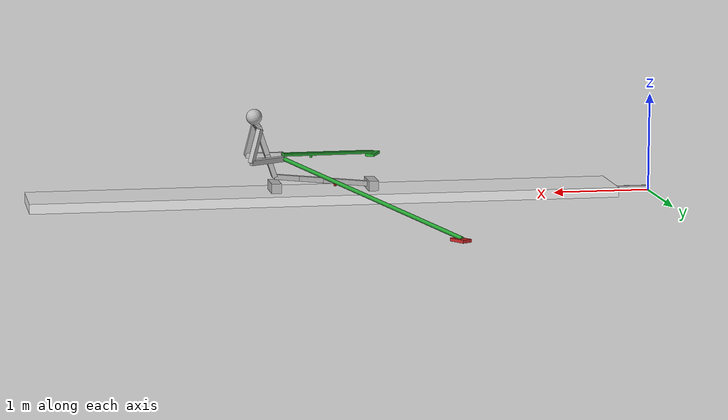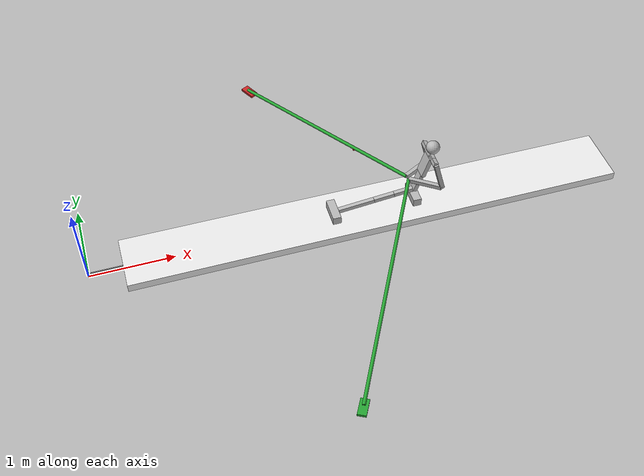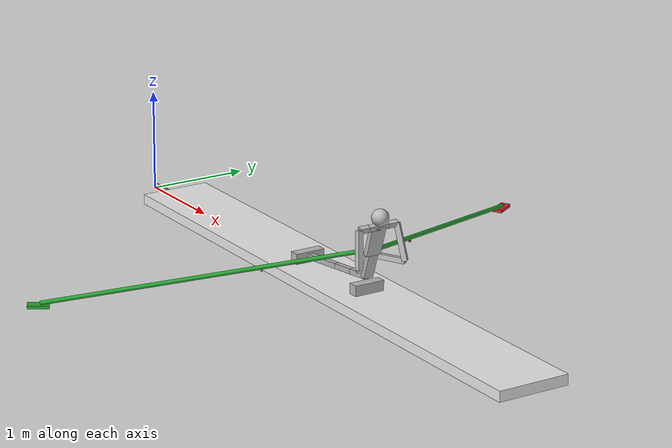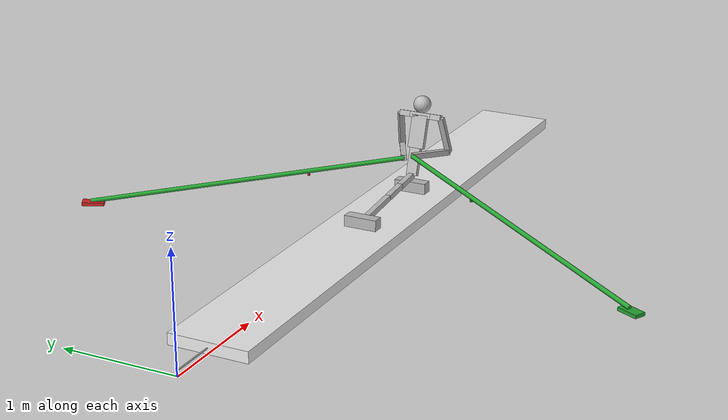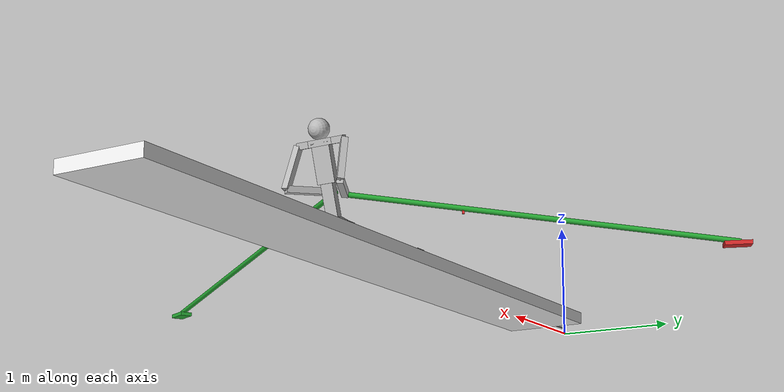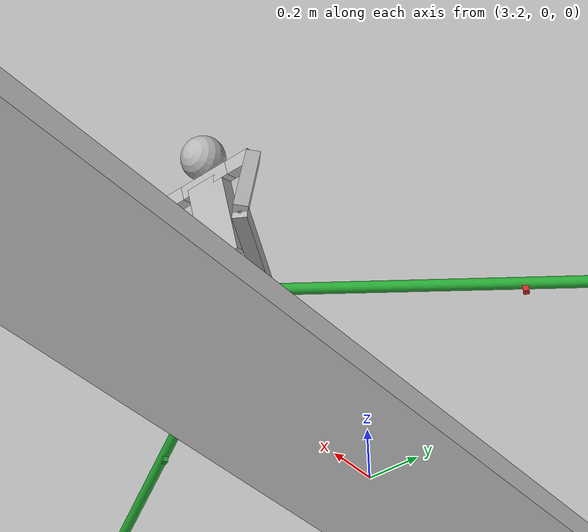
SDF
<sdf version='1.6'>
  <model name='myboat'>
    <link name='l1'>
      <pose frame=''>0 0 0.25 0 -0 0</pose>
      <inertial>
        <pose frame=''>0 0 -0.1 0 -0 0</pose>
        <mass>0.01</mass>
        <inertia>
          <ixx>3.3e-05</ixx>
          <ixy>0</ixy>
          <ixz>0</ixz>
          <iyy>3.3e-05</iyy>
          <iyz>0</iyz>
          <izz>1.67e-07</izz>
        </inertia>
      </inertial>
      <visual name='l1_visual'>
        <pose frame=''>0 0 -0.1 0 -0 0</pose>
        <geometry>
          <box>
            <size>0.01 0.01 0.2</size>
          </box>
        </geometry>
      </visual>
    </link>
    <joint name='prism' type='prismatic'>
      <child>l1</child>
      <parent>world</parent>
      <axis>
        <xyz>1 0 0</xyz>
        <limit>
          <lower>0</lower>
          <upper>1000</upper>
          <effort>101</effort>
          <velocity>0.5</velocity>
        </limit>
        <dynamics>
          <damping>0.005</damping>
          <friction>0</friction>
          <spring_reference>0</spring_reference>
          <spring_stiffness>0</spring_stiffness>
        </dynamics>
        <use_parent_model_frame>1</use_parent_model_frame>
      </axis>
    </joint>
    <link name='l2'>
      <pose frame=''>0 0 0.05 3.14159 1.57079 3.14159</pose>
      <inertial>
        <pose frame=''>0 0 0.2 0 -0 0</pose>
        <mass>0.01</mass>
        <inertia>
          <ixx>0.000133</ixx>
          <ixy>0</ixy>
          <ixz>0</ixz>
          <iyy>133</iyy>
          <iyz>0</iyz>
          <izz>1.67e-07</izz>
        </inertia>
      </inertial>
      <visual name='l2_visual'>
        <pose frame=''>0 0 0.2 0 -0 0</pose>
        <geometry>
          <box>
            <size>0.01 0.01 0.4</size>
          </box>
        </geometry>
      </visual>
    </link>
    <joint name='rev1' type='revolute'>
      <child>l2</child>
      <parent>l1</parent>
      <axis>
        <xyz>0 1 0</xyz>
        <limit>
          <lower>-1</lower>
          <upper>1</upper>
          <effort>101</effort>
          <velocity>1</velocity>
        </limit>
        <dynamics>
          <damping>0.005</damping>
          <friction>0</friction>
          <spring_reference>0</spring_reference>
          <spring_stiffness>0</spring_stiffness>
        </dynamics>
        <use_parent_model_frame>1</use_parent_model_frame>
      </axis>
    </joint>
    <link name='skiff'>
      <pose frame=''>0.4 0 0.05 0 0 3.14159</pose>
      <inertial>
        <pose frame=''>-2.99941 0 0.000118 0 -0 0</pose>
        <mass>85.1</mass>
        <inertia>
          <ixx>3.2018</ixx>
          <ixy>0</ixy>
          <ixz>-0.00499412</ixz>
          <iyy>225.026</iyy>
          <iyz>0</iyz>
          <izz>228.026</izz>
        </inertia>
      </inertial>
      <collision name='skiff_collision'>
        <pose frame=''>-3 0 0 0 -0 0</pose>
        <geometry>
          <box>
            <size>6 0.7 0.1</size>
          </box>
        </geometry>
        <surface>
          <friction>
            <ode>
              <slip1>0.05</slip1>
              <slip2>0.12</slip2>
              <mu>0.01</mu>
              <mu2>0.01</mu2>
            </ode>
          </friction>
          <contact>
            <ode/>
          </contact>
        </surface>
      </collision>
      <collision name='skiff_fixed_joint_lump__footplate_collision_1'>
        <pose frame=''>-2.5 0 0.1 0 -0 0</pose>
        <geometry>
          <box>
            <size>0.1 0.3 0.1</size>
          </box>
        </geometry>
      </collision>
      <visual name='skiff_visual'>
        <pose frame=''>-3 0 0 0 -0 0</pose>
        <geometry>
          <box>
            <size>6 0.7 0.1</size>
          </box>
        </geometry>
        <material>
          <script>
            <name>Gazebo/White</name>
            <uri>file://media/materials/scripts/gazebo.material</uri>
          </script>
        </material>
      </visual>
      <visual name='skiff_fixed_joint_lump__footplate_visual_1'>
        <pose frame=''>-2.5 0 0.1 0 -0 0</pose>
        <geometry>
          <box>
            <size>0.1 0.3 0.1</size>
          </box>
        </geometry>
      </visual>
      <gravity>1</gravity>
      <velocity_decay/>
    </link>
    <joint name='rev2' type='revolute'>
      <child>skiff</child>
      <parent>l2</parent>
      <axis>
        <xyz>-0 -1 0</xyz>
        <limit>
          <lower>-1</lower>
          <upper>1</upper>
          <effort>101</effort>
          <velocity>1</velocity>
        </limit>
        <dynamics>
          <damping>0.005</damping>
          <friction>0</friction>
          <spring_reference>0</spring_reference>
          <spring_stiffness>0</spring_stiffness>
        </dynamics>
        <use_parent_model_frame>1</use_parent_model_frame>
      </axis>
    </joint>
    <link name='port_rowlock_l'>
      <pose frame=''>3.4 0.8 0.3 0 0 -2.64769</pose>
      <inertial>
        <pose frame=''>0 0 0 0 -0 0</pose>
        <mass>0.1</mass>
        <inertia>
          <ixx>1.7e-05</ixx>
          <ixy>0</ixy>
          <ixz>0</ixz>
          <iyy>1.7e-05</iyy>
          <iyz>0</iyz>
          <izz>7e-06</izz>
        </inertia>
      </inertial>
      <collision name='port_rowlock_l_collision'>
        <pose frame=''>0 0 0 0 -0 0</pose>
        <geometry>
          <box>
            <size>0.02 0.02 0.04</size>
          </box>
        </geometry>
        <surface>
          <contact>
            <ode/>
          </contact>
          <friction>
            <ode>
              <mu>0.01</mu>
              <mu2>0.01</mu2>
            </ode>
          </friction>
        </surface>
      </collision>
      <visual name='port_rowlock_l_visual'>
        <pose frame=''>0 0 0 0 -0 0</pose>
        <geometry>
          <box>
            <size>0.02 0.02 0.04</size>
          </box>
        </geometry>
        <material>
          <script>
            <name>Gazebo/Red</name>
            <uri>file://media/materials/scripts/gazebo.material</uri>
          </script>
        </material>
      </visual>
      <gravity>1</gravity>
      <velocity_decay/>
    </link>
    <joint name='port_rowlock' type='revolute'>
      <child>port_rowlock_l</child>
      <parent>skiff</parent>
      <axis>
        <xyz>-0 0 1</xyz>
        <limit>
          <lower>-1.4</lower>
          <upper>1.4</upper>
          <effort>101</effort>
          <velocity>1</velocity>
        </limit>
        <dynamics>
          <damping>0.005</damping>
          <friction>0</friction>
          <spring_reference>0</spring_reference>
          <spring_stiffness>0</spring_stiffness>
        </dynamics>
        <use_parent_model_frame>1</use_parent_model_frame>
      </axis>
      <physics>
        <provide_feedback>1</provide_feedback>
        <ode>
          <provide_feedback>1</provide_feedback>
          <limit>
            <cfm>0</cfm>
            <erp>0.2</erp>
          </limit>
        </ode>
      </physics>
    </joint>
    <link name='port_oar_l'>
      <pose frame=''>3.4 0.8 0.32 -3.14159 1.4349 -1.0769</pose>
      <inertial>
        <pose frame=''>0 0 0.565 0 -0 0</pose>
        <mass>1</mass>
        <inertia>
          <ixx>0.6</ixx>
          <ixy>0</ixy>
          <ixz>0</ixz>
          <iyy>0.6</iyy>
          <iyz>0</iyz>
          <izz>0.001</izz>
        </inertia>
      </inertial>
      <collision name='port_oar_l_collision'>
        <pose frame=''>0 0 0.565 0 -0 0</pose>
        <geometry>
          <cylinder>
            <length>2.27</length>
            <radius>0.02</radius>
          </cylinder>
        </geometry>
        <surface>
          <contact>
            <ode/>
          </contact>
          <friction>
            <ode>
              <mu>0.01</mu>
              <mu2>0.01</mu2>
            </ode>
          </friction>
        </surface>
      </collision>
      <visual name='port_oar_l_visual'>
        <pose frame=''>0 0 0.565 0 -0 0</pose>
        <geometry>
          <cylinder>
            <length>2.87</length>
            <radius>0.02</radius>
          </cylinder>
        </geometry>
        <material>
          <script>
            <name>Gazebo/Green</name>
            <uri>file://media/materials/scripts/gazebo.material</uri>
          </script>
        </material>
      </visual>
      <gravity>1</gravity>
      <velocity_decay/>
    </link>
    <joint name='port_oar' type='revolute'>
      <child>port_oar_l</child>
      <parent>port_rowlock_l</parent>
      <axis>
        <xyz>-0.880491 -0.474063 -0</xyz>
        <limit>
          <lower>-0.1</lower>
          <upper>0.4</upper>
          <effort>101</effort>
          <velocity>1</velocity>
        </limit>
        <dynamics>
          <damping>0.005</damping>
          <friction>0</friction>
          <spring_reference>0</spring_reference>
          <spring_stiffness>0</spring_stiffness>
        </dynamics>
        <use_parent_model_frame>1</use_parent_model_frame>
      </axis>
      <physics>
        <provide_feedback>1</provide_feedback>
        <ode>
          <provide_feedback>1</provide_feedback>
          <limit>
            <cfm>0</cfm>
            <erp>0.2</erp>
          </limit>
        </ode>
      </physics>
    </joint>
    <link name='handle_right_l1'>
      <pose frame=''>3.80863 0.041036 0.437869 1.6571 0 -2.64769</pose>
      <inertial>
        <pose frame=''>0 0 0 0 -0 0</pose>
        <mass>0.01</mass>
        <inertia>
          <ixx>1.67e-07</ixx>
          <ixy>0</ixy>
          <ixz>0</ixz>
          <iyy>1.67e-07</iyy>
          <iyz>0</iyz>
          <izz>1.67e-07</izz>
        </inertia>
      </inertial>
      <visual name='handle_right_l1_visual'>
        <pose frame=''>0 0 0 0 -0 0</pose>
        <geometry>
          <box>
            <size>0.01 0.01 0.01</size>
          </box>
        </geometry>
      </visual>
    </link>
    <joint name='handle_right_j1' type='revolute'>
      <child>handle_right_l1</child>
      <parent>port_oar_l</parent>
      <axis>
        <xyz>0.880491 0.474063 0</xyz>
        <limit>
          <lower>-1</lower>
          <upper>1</upper>
          <effort>101</effort>
          <velocity>1</velocity>
        </limit>
        <dynamics>
          <damping>0.005</damping>
          <friction>0</friction>
          <spring_reference>0</spring_reference>
          <spring_stiffness>0</spring_stiffness>
        </dynamics>
        <use_parent_model_frame>1</use_parent_model_frame>
      </axis>
    </joint>
    <link name='handle_right_l2'>
      <pose frame=''>3.80863 0.041036 0.437869 1.6571 -0.007372 -2.64833</pose>
      <inertial>
        <pose frame=''>0 0 0 0 -0 0</pose>
        <mass>0.01</mass>
        <inertia>
          <ixx>1.67e-07</ixx>
          <ixy>0</ixy>
          <ixz>0</ixz>
          <iyy>1.67e-07</iyy>
          <iyz>0</iyz>
          <izz>1.67e-07</izz>
        </inertia>
      </inertial>
      <visual name='handle_right_l2_visual'>
        <pose frame=''>0 0 0 0 -0 0</pose>
        <geometry>
          <box>
            <size>0.01 0.01 0.01</size>
          </box>
        </geometry>
      </visual>
    </link>
    <joint name='handle_right_j2' type='revolute'>
      <child>handle_right_l2</child>
      <parent>handle_right_l1</parent>
      <axis>
        <xyz>-0.472299 0.877214 -0.086193</xyz>
        <limit>
          <lower>-1</lower>
          <upper>1</upper>
          <effort>101</effort>
          <velocity>1</velocity>
        </limit>
        <dynamics>
          <damping>0.005</damping>
          <friction>0</friction>
          <spring_reference>0</spring_reference>
          <spring_stiffness>0</spring_stiffness>
        </dynamics>
        <use_parent_model_frame>1</use_parent_model_frame>
      </axis>
    </joint>
    <link name='arm_r_lower'>
      <pose frame=''>3.80863 0.041036 0.437869 1.65716 -0.006648 -2.6567</pose>
      <inertial>
        <pose frame=''>-0.2 0 0 0 -0 0</pose>
        <mass>1</mass>
        <inertia>
          <ixx>0.0004</ixx>
          <ixy>0</ixy>
          <ixz>0</ixz>
          <iyy>0.0035</iyy>
          <iyz>0</iyz>
          <izz>0.0035</izz>
        </inertia>
      </inertial>
      <collision name='arm_r_lower_collision'>
        <pose frame=''>-0.2 0 0 0 -0 0</pose>
        <geometry>
          <box>
            <size>0.4 0.05 0.05</size>
          </box>
        </geometry>
      </collision>
      <visual name='arm_r_lower_visual'>
        <pose frame=''>-0.2 0 0 0 -0 0</pose>
        <geometry>
          <box>
            <size>0.4 0.05 0.05</size>
          </box>
        </geometry>
      </visual>
    </link>
    <joint name='handle_right_j3' type='revolute'>
      <child>arm_r_lower</child>
      <parent>handle_right_l2</parent>
      <axis>
        <xyz>0.034344 -0.079398 -0.996251</xyz>
        <limit>
          <lower>-1</lower>
          <upper>1</upper>
          <effort>101</effort>
          <velocity>1</velocity>
        </limit>
        <dynamics>
          <damping>0.005</damping>
          <friction>0</friction>
          <spring_reference>0</spring_reference>
          <spring_stiffness>0</spring_stiffness>
        </dynamics>
        <use_parent_model_frame>1</use_parent_model_frame>
      </axis>
    </joint>
    <link name='right_elbow_psi_link'>
      <pose frame=''>4.16251 0.227477 0.43521 1.87971 -1.28315 -2.95309</pose>
      <inertial>
        <pose frame=''>0 0 0 0 -0 0</pose>
        <mass>0.01</mass>
        <inertia>
          <ixx>1.67e-07</ixx>
          <ixy>0</ixy>
          <ixz>0</ixz>
          <iyy>1.67e-07</iyy>
          <iyz>0</iyz>
          <izz>1.67e-07</izz>
        </inertia>
      </inertial>
      <visual name='right_elbow_psi_link_visual'>
        <pose frame=''>0 0 0 0 -0 0</pose>
        <geometry>
          <box>
            <size>0.01 0.01 0.01</size>
          </box>
        </geometry>
      </visual>
    </link>
    <joint name='elbow_right' type='revolute'>
      <child>right_elbow_psi_link</child>
      <parent>arm_r_lower</parent>
      <axis>
        <xyz>-0.464884 0.88116 -0.086252</xyz>
        <limit>
          <lower>-1</lower>
          <upper>1</upper>
          <effort>101</effort>
          <velocity>1</velocity>
        </limit>
        <dynamics>
          <damping>0.5</damping>
          <friction>0</friction>
          <spring_reference>0</spring_reference>
          <spring_stiffness>0</spring_stiffness>
        </dynamics>
        <use_parent_model_frame>1</use_parent_model_frame>
      </axis>
    </joint>
    <link name='right_elbow_theta_link'>
      <pose frame=''>4.16251 0.227477 0.43521 1.78432 -1.29059 -2.85373</pose>
      <inertial>
        <pose frame=''>0 0 0 0 -0 0</pose>
        <mass>0.01</mass>
        <inertia>
          <ixx>1.67e-07</ixx>
          <ixy>0</ixy>
          <ixz>0</ixz>
          <iyy>1.67e-07</iyy>
          <iyz>0</iyz>
          <izz>1.67e-07</izz>
        </inertia>
      </inertial>
      <visual name='right_elbow_theta_link_visual'>
        <pose frame=''>0 0 0 0 -0 0</pose>
        <geometry>
          <box>
            <size>0.01 0.01 0.01</size>
          </box>
        </geometry>
      </visual>
    </link>
    <joint name='elbow_theta_r' type='revolute'>
      <child>right_elbow_theta_link</child>
      <parent>right_elbow_psi_link</parent>
      <axis>
        <xyz>0.840371 0.46982 0.27027</xyz>
        <limit>
          <lower>-2</lower>
          <upper>1</upper>
          <effort>101</effort>
          <velocity>1</velocity>
        </limit>
        <dynamics>
          <damping>0.5</damping>
          <friction>0</friction>
          <spring_reference>0</spring_reference>
          <spring_stiffness>0</spring_stiffness>
        </dynamics>
        <use_parent_model_frame>1</use_parent_model_frame>
      </axis>
    </joint>
    <link name='arm_r_upper'>
      <pose frame=''>4.16251 0.227477 0.43521 2.06182 -1.29059 -2.85373</pose>
      <inertial>
        <pose frame=''>0.175 0 0 0 -0 0</pose>
        <mass>1</mass>
        <inertia>
          <ixx>0.004</ixx>
          <ixy>0</ixy>
          <ixz>0</ixz>
          <iyy>0.01</iyy>
          <iyz>0</iyz>
          <izz>0.01</izz>
        </inertia>
      </inertial>
      <collision name='arm_r_upper_collision'>
        <pose frame=''>0.175 0 0 0 -0 0</pose>
        <geometry>
          <box>
            <size>0.35 0.05 0.05</size>
          </box>
        </geometry>
      </collision>
      <visual name='arm_r_upper_visual'>
        <pose frame=''>0.175 0 0 0 -0 0</pose>
        <geometry>
          <box>
            <size>0.35 0.05 0.05</size>
          </box>
        </geometry>
      </visual>
    </link>
    <joint name='elbow_xx_r' type='revolute'>
      <child>arm_r_upper</child>
      <parent>right_elbow_theta_link</parent>
      <axis>
        <xyz>0.265171 0.078512 -0.960999</xyz>
        <limit>
          <lower>-1</lower>
          <upper>2</upper>
          <effort>101</effort>
          <velocity>1</velocity>
        </limit>
        <dynamics>
          <damping>0.5</damping>
          <friction>0</friction>
          <spring_reference>0</spring_reference>
          <spring_stiffness>0</spring_stiffness>
        </dynamics>
        <use_parent_model_frame>1</use_parent_model_frame>
      </axis>
    </joint>
    <link name='right_shoulder_psi_link'>
      <pose frame=''>4.0697 0.199998 0.77156 -2.72451 -0.924763 -1.11523</pose>
      <inertial>
        <pose frame=''>0 0 0 0 -0 0</pose>
        <mass>0.01</mass>
        <inertia>
          <ixx>1.67e-07</ixx>
          <ixy>0</ixy>
          <ixz>0</ixz>
          <iyy>1.67e-07</iyy>
          <iyz>0</iyz>
          <izz>1.67e-07</izz>
        </inertia>
      </inertial>
      <visual name='right_shoulder_psi_link_visual'>
        <pose frame=''>0 0 0 0 -0 0</pose>
        <geometry>
          <box>
            <size>0.01 0.01 0.01</size>
          </box>
        </geometry>
      </visual>
    </link>
    <joint name='shoulder_theta_r' type='revolute'>
      <child>right_shoulder_psi_link</child>
      <parent>arm_r_upper</parent>
      <axis>
        <xyz>0.67872 0.692722 0.243876</xyz>
        <limit>
          <lower>-1.5</lower>
          <upper>1</upper>
          <effort>101</effort>
          <velocity>1</velocity>
        </limit>
        <dynamics>
          <damping>0.5</damping>
          <friction>0</friction>
          <spring_reference>0</spring_reference>
          <spring_stiffness>0</spring_stiffness>
        </dynamics>
        <use_parent_model_frame>1</use_parent_model_frame>
      </axis>
    </joint>
    <link name='right_shoulder_xx_link'>
      <pose frame=''>4.0697 0.199998 0.77156 1.02169 -0.924763 -1.11523</pose>
      <inertial>
        <pose frame=''>0 0 0 0 -0 0</pose>
        <mass>0.01</mass>
        <inertia>
          <ixx>1.67e-07</ixx>
          <ixy>0</ixy>
          <ixz>0</ixz>
          <iyy>1.67e-07</iyy>
          <iyz>0</iyz>
          <izz>1.67e-07</izz>
        </inertia>
      </inertial>
      <visual name='right_shoulder_xx_link_visual'>
        <pose frame=''>0 0 0 0 -0 0</pose>
        <geometry>
          <box>
            <size>0.01 0.01 0.01</size>
          </box>
        </geometry>
      </visual>
    </link>
    <joint name='shoulder_psi_r' type='revolute'>
      <child>right_shoulder_xx_link</child>
      <parent>right_shoulder_psi_link</parent>
      <axis>
        <xyz>0.264872 -0.540625 0.798478</xyz>
        <limit>
          <lower>-1.5</lower>
          <upper>1.5</upper>
          <effort>101</effort>
          <velocity>1</velocity>
        </limit>
        <dynamics>
          <damping>0.005</damping>
          <friction>0</friction>
          <spring_reference>0</spring_reference>
          <spring_stiffness>0</spring_stiffness>
        </dynamics>
        <use_parent_model_frame>1</use_parent_model_frame>
      </axis>
    </joint>
    <link name='shoulder_right'>
      <pose frame=''>4.0697 0.199998 0.77156 0.005215 -1.25116 -0.004393</pose>
      <inertial>
        <pose frame=''>0 -0.19901 0 0 -0 0</pose>
        <mass>1.01</mass>
        <inertia>
          <ixx>0.0130992</ixx>
          <ixy>0</ixy>
          <ixz>0</ixz>
          <iyy>0.000400167</iyy>
          <iyz>0</iyz>
          <izz>0.0130992</izz>
        </inertia>
      </inertial>
      <collision name='shoulder_right_collision'>
        <pose frame=''>0 -0.2 0 0 -0 0</pose>
        <geometry>
          <box>
            <size>0.05 0.1 0.05</size>
          </box>
        </geometry>
      </collision>
      <visual name='shoulder_right_visual'>
        <pose frame=''>0 -0.05 0 0 -0 0</pose>
        <geometry>
          <box>
            <size>0.05 0.1 0.05</size>
          </box>
        </geometry>
      </visual>
      <visual name='shoulder_right_fixed_joint_lump__Rdummy_link_2_visual_1'>
        <pose frame=''>0 -0.1 0 -3.14159 -0 0</pose>
        <geometry>
          <box>
            <size>0.01 0.01 0.01</size>
          </box>
        </geometry>
      </visual>
    </link>
    <joint name='shoulder_r' type='revolute'>
      <child>shoulder_right</child>
      <parent>right_shoulder_xx_link</parent>
      <axis>
        <xyz>-0.949352 -0.001045 0.314212</xyz>
        <limit>
          <lower>-1</lower>
          <upper>0.5</upper>
          <effort>101</effort>
          <velocity>1</velocity>
        </limit>
        <dynamics>
          <damping>0.005</damping>
          <friction>0</friction>
          <spring_reference>0</spring_reference>
          <spring_stiffness>0</spring_stiffness>
        </dynamics>
        <use_parent_model_frame>1</use_parent_model_frame>
      </axis>
    </joint>
    <link name='port_blade_l'>
      <pose frame=''>2.46062 2.54474 0.049036 -3.14159 1.4349 -1.0769</pose>
      <inertial>
        <pose frame=''>0.02 0 -0.02 0 1.4 0</pose>
        <mass>1</mass>
        <inertia>
          <ixx>0.0009</ixx>
          <ixy>0</ixy>
          <ixz>0</ixz>
          <iyy>0.0034</iyy>
          <iyz>0</iyz>
          <izz>0.004</izz>
        </inertia>
      </inertial>
      <collision name='port_blade_l_collision'>
        <pose frame=''>0.02 0 -0.02 0 1.4 0</pose>
        <geometry>
          <box>
            <size>0.2 0.1 0.03</size>
          </box>
        </geometry>
        <surface>
          <contact>
            <ode/>
          </contact>
          <friction>
            <ode>
              <mu>10</mu>
              <mu2>10</mu2>
            </ode>
          </friction>
        </surface>
      </collision>
      <visual name='port_blade_l_visual'>
        <pose frame=''>0.02 0 -0.02 0 1.4 0</pose>
        <geometry>
          <box>
            <size>0.2 0.1 0.03</size>
          </box>
        </geometry>
        <material>
          <script>
            <name>Gazebo/Red</name>
            <uri>file://media/materials/scripts/gazebo.material</uri>
          </script>
        </material>
      </visual>
      <gravity>1</gravity>
      <velocity_decay/>
    </link>
    <joint name='port_blade' type='revolute'>
      <child>port_blade_l</child>
      <parent>port_oar_l</parent>
      <axis>
        <xyz>-0.880491 -0.474063 -0</xyz>
        <limit>
          <lower>-0.4</lower>
          <upper>0.4</upper>
          <effort>101</effort>
          <velocity>1</velocity>
        </limit>
        <dynamics>
          <damping>0.005</damping>
          <friction>0</friction>
          <spring_reference>0</spring_reference>
          <spring_stiffness>0</spring_stiffness>
        </dynamics>
        <use_parent_model_frame>1</use_parent_model_frame>
      </axis>
      <physics>
        <provide_feedback>1</provide_feedback>
        <ode>
          <provide_feedback>1</provide_feedback>
          <limit>
            <cfm>0</cfm>
            <erp>0.2</erp>
          </limit>
        </ode>
      </physics>
    </joint>
    <link name='lowerleg'>
      <pose frame=''>2.9 0 0.15 0 0.100168 -3.14159</pose>
      <inertial>
        <pose frame=''>-0.25 0 0 0 -0 0</pose>
        <mass>1</mass>
        <inertia>
          <ixx>0.001</ixx>
          <ixy>0</ixy>
          <ixz>0</ixz>
          <iyy>0.0005</iyy>
          <iyz>0</iyz>
          <izz>0.001</izz>
        </inertia>
      </inertial>
      <collision name='lowerleg_collision'>
        <pose frame=''>-0.25 0 0 0 -0 0</pose>
        <geometry>
          <box>
            <size>0.5 0.05 0.05</size>
          </box>
        </geometry>
      </collision>
      <visual name='lowerleg_visual'>
        <pose frame=''>-0.25 0 0 0 -0 0</pose>
        <geometry>
          <box>
            <size>0.5 0.05 0.05</size>
          </box>
        </geometry>
      </visual>
    </link>
    <joint name='fp_ll' type='revolute'>
      <child>lowerleg</child>
      <parent>skiff</parent>
      <axis>
        <xyz>-0 -1 0</xyz>
        <limit>
          <lower>0</lower>
          <upper>1.5708</upper>
          <effort>101</effort>
          <velocity>1</velocity>
        </limit>
        <dynamics>
          <damping>0.005</damping>
          <friction>0</friction>
          <spring_reference>0</spring_reference>
          <spring_stiffness>0</spring_stiffness>
        </dynamics>
        <use_parent_model_frame>1</use_parent_model_frame>
      </axis>
    </joint>
    <link name='upperleg_1'>
      <pose frame=''>3.39749 0 0.2 0 0.100168 -3.14159</pose>
      <inertial>
        <pose frame=''>-0.125 0 0 0 -0 0</pose>
        <mass>1</mass>
        <inertia>
          <ixx>0.001</ixx>
          <ixy>0</ixy>
          <ixz>0</ixz>
          <iyy>0.0005</iyy>
          <iyz>0</iyz>
          <izz>0.001</izz>
        </inertia>
      </inertial>
      <collision name='upperleg_1_collision'>
        <pose frame=''>-0.125 0 0 0 -0 0</pose>
        <geometry>
          <box>
            <size>0.25 0.05 0.05</size>
          </box>
        </geometry>
      </collision>
      <visual name='upperleg_1_visual'>
        <pose frame=''>-0.125 0 0 0 -0 0</pose>
        <geometry>
          <box>
            <size>0.25 0.05 0.05</size>
          </box>
        </geometry>
      </visual>
    </link>
    <joint name='knee' type='revolute'>
      <child>upperleg_1</child>
      <parent>lowerleg</parent>
      <axis>
        <xyz>-0 -1 0</xyz>
        <limit>
          <lower>-3.1</lower>
          <upper>0</upper>
          <effort>1000</effort>
          <velocity>1</velocity>
        </limit>
        <dynamics>
          <damping>0.005</damping>
          <friction>0</friction>
          <spring_reference>0</spring_reference>
          <spring_stiffness>0</spring_stiffness>
        </dynamics>
        <use_parent_model_frame>1</use_parent_model_frame>
      </axis>
    </joint>
    <link name='seat'>
      <pose frame=''>3.89514 0 0.15 0 0 3.14159</pose>
      <inertial>
        <pose frame=''>0 0 0 0 -0 0</pose>
        <mass>0.1</mass>
        <inertia>
          <ixx>0.001</ixx>
          <ixy>0</ixy>
          <ixz>0</ixz>
          <iyy>0.0005</iyy>
          <iyz>0</iyz>
          <izz>0.001</izz>
        </inertia>
      </inertial>
      <collision name='seat_collision'>
        <pose frame=''>0 0 0 0 -0 0</pose>
        <geometry>
          <box>
            <size>0.1 0.3 0.1</size>
          </box>
        </geometry>
      </collision>
      <visual name='seat_visual'>
        <pose frame=''>0 0 0 0 -0 0</pose>
        <geometry>
          <box>
            <size>0.1 0.3 0.1</size>
          </box>
        </geometry>
      </visual>
    </link>
    <joint name='sliding' type='prismatic'>
      <child>seat</child>
      <parent>skiff</parent>
      <axis>
        <xyz>-1 0 -0</xyz>
        <limit>
          <lower>-0.1</lower>
          <upper>0.8</upper>
          <effort>101</effort>
          <velocity>0.5</velocity>
        </limit>
        <dynamics>
          <damping>0.005</damping>
          <friction>0</friction>
          <spring_reference>0</spring_reference>
          <spring_stiffness>0</spring_stiffness>
        </dynamics>
        <use_parent_model_frame>1</use_parent_model_frame>
      </axis>
    </joint>
    <link name='upperleg_2'>
      <pose frame=''>3.89514 0 0.25 0 0.100168 -3.14159</pose>
      <inertial>
        <pose frame=''>0.125 0 0 0 -0 0</pose>
        <mass>1</mass>
        <inertia>
          <ixx>0.001</ixx>
          <ixy>0</ixy>
          <ixz>0</ixz>
          <iyy>0.0005</iyy>
          <iyz>0</iyz>
          <izz>0.001</izz>
        </inertia>
      </inertial>
      <collision name='upperleg_2_collision'>
        <pose frame=''>0.125 0 0 0 -0 0</pose>
        <geometry>
          <box>
            <size>0.25 0.05 0.05</size>
          </box>
        </geometry>
      </collision>
      <visual name='upperleg_2_visual'>
        <pose frame=''>0.125 0 0 0 -0 0</pose>
        <geometry>
          <box>
            <size>0.25 0.05 0.05</size>
          </box>
        </geometry>
      </visual>
    </link>
    <joint name='hip1' type='revolute'>
      <child>upperleg_2</child>
      <parent>seat</parent>
      <axis>
        <xyz>-0 -1 0</xyz>
        <limit>
          <lower>-1.6</lower>
          <upper>0</upper>
          <effort>101</effort>
          <velocity>1</velocity>
        </limit>
        <dynamics>
          <damping>0.005</damping>
          <friction>0</friction>
          <spring_reference>0</spring_reference>
          <spring_stiffness>0</spring_stiffness>
        </dynamics>
        <use_parent_model_frame>1</use_parent_model_frame>
      </axis>
    </joint>
    <link name='back_low'>
      <pose frame=''>3.89514 0 0.25 3.14159 -1.2418 0</pose>
      <inertial>
        <pose frame=''>0.125 0 0 0 -0 0</pose>
        <mass>10</mass>
        <inertia>
          <ixx>0.01</ixx>
          <ixy>0</ixy>
          <ixz>0</ixz>
          <iyy>0.077</iyy>
          <iyz>0</iyz>
          <izz>0.083</izz>
        </inertia>
      </inertial>
      <collision name='back_low_collision'>
        <pose frame=''>0.125 0 0 0 -0 0</pose>
        <geometry>
          <box>
            <size>0.25 0.1 0.05</size>
          </box>
        </geometry>
      </collision>
      <visual name='back_low_visual'>
        <pose frame=''>0.125 0 0 0 -0 0</pose>
        <geometry>
          <box>
            <size>0.25 0.1 0.05</size>
          </box>
        </geometry>
      </visual>
    </link>
    <joint name='hip2' type='revolute'>
      <child>back_low</child>
      <parent>seat</parent>
      <axis>
        <xyz>-0 -1 0</xyz>
        <limit>
          <lower>-1</lower>
          <upper>1</upper>
          <effort>1000</effort>
          <velocity>1</velocity>
        </limit>
        <dynamics>
          <damping>0.005</damping>
          <friction>0</friction>
          <spring_reference>0</spring_reference>
          <spring_stiffness>0</spring_stiffness>
        </dynamics>
        <use_parent_model_frame>1</use_parent_model_frame>
      </axis>
    </joint>
    <link name='back_high'>
      <pose frame=''>3.97591 0 0.486591 3.14159 -1.2528 0</pose>
      <inertial>
        <pose frame=''>0.237578 0 0 0 -0 0</pose>
        <mass>16.02</mass>
        <inertia>
          <ixx>0.0460003</ixx>
          <ixy>0</ixy>
          <ixz>0</ixz>
          <iyy>0.302778</iyy>
          <iyz>0</iyz>
          <izz>0.332578</izz>
        </inertia>
      </inertial>
      <collision name='back_high_collision'>
        <pose frame=''>0.15 0 0 0 -0 0</pose>
        <geometry>
          <box>
            <size>0.3 0.15 0.05</size>
          </box>
        </geometry>
      </collision>
      <collision name='back_high_fixed_joint_lump__shoulder_link_collision_1'>
        <pose frame=''>0.3 0 0 0 -0 0</pose>
        <geometry>
          <box>
            <size>0.05 0.2 0.05</size>
          </box>
        </geometry>
      </collision>
      <collision name='back_high_fixed_joint_lump__head_collision_2'>
        <pose frame=''>0.4 0 0 0 -0 0</pose>
        <geometry>
          <sphere>
            <radius>0.08</radius>
          </sphere>
        </geometry>
      </collision>
      <visual name='back_high_visual'>
        <pose frame=''>0.15 0 0 0 -0 0</pose>
        <geometry>
          <box>
            <size>0.3 0.15 0.05</size>
          </box>
        </geometry>
      </visual>
      <visual name='back_high_fixed_joint_lump__shoulder_link_visual_1'>
        <pose frame=''>0.3 0 0 0 -0 0</pose>
        <geometry>
          <box>
            <size>0.05 0.2 0.05</size>
          </box>
        </geometry>
      </visual>
      <visual name='back_high_fixed_joint_lump__Ldummy_link_1_visual_2'>
        <pose frame=''>0.3 0.1 0 0 -0 0</pose>
        <geometry>
          <box>
            <size>0.01 0.01 0.01</size>
          </box>
        </geometry>
      </visual>
      <visual name='back_high_fixed_joint_lump__Rdummy_link_1_visual_3'>
        <pose frame=''>0.3 -0.1 0 0 -0 0</pose>
        <geometry>
          <box>
            <size>0.01 0.01 0.01</size>
          </box>
        </geometry>
      </visual>
      <visual name='back_high_fixed_joint_lump__head_visual_4'>
        <pose frame=''>0.4 0 0 0 -0 0</pose>
        <geometry>
          <sphere>
            <radius>0.08</radius>
          </sphere>
        </geometry>
      </visual>
    </link>
    <joint name='back_lh' type='revolute'>
      <child>back_high</child>
      <parent>back_low</parent>
      <axis>
        <xyz>-0 -1 0</xyz>
        <limit>
          <lower>0</lower>
          <upper>0.5</upper>
          <effort>101</effort>
          <velocity>1</velocity>
        </limit>
        <dynamics>
          <damping>0.5</damping>
          <friction>0</friction>
          <spring_reference>0</spring_reference>
          <spring_stiffness>0</spring_stiffness>
        </dynamics>
        <use_parent_model_frame>1</use_parent_model_frame>
      </axis>
    </joint>
    <link name='starboard_rowlock_l'>
      <pose frame=''>3.4 -0.8 0.32 -0 0 2.64769</pose>
      <inertial>
        <pose frame=''>0 0 0 0 -0 0</pose>
        <mass>0.1</mass>
        <inertia>
          <ixx>1.7e-05</ixx>
          <ixy>0</ixy>
          <ixz>0</ixz>
          <iyy>1.7e-05</iyy>
          <iyz>0</iyz>
          <izz>7e-06</izz>
        </inertia>
      </inertial>
      <collision name='starboard_rowlock_l_collision'>
        <pose frame=''>0 0 0 0 -0 0</pose>
        <geometry>
          <box>
            <size>0.02 0.02 0.04</size>
          </box>
        </geometry>
        <surface>
          <contact>
            <ode/>
          </contact>
          <friction>
            <ode>
              <mu>0.01</mu>
              <mu2>0.01</mu2>
            </ode>
          </friction>
        </surface>
      </collision>
      <visual name='starboard_rowlock_l_visual'>
        <pose frame=''>0 0 0 0 -0 0</pose>
        <geometry>
          <box>
            <size>0.02 0.02 0.04</size>
          </box>
        </geometry>
        <material>
          <script>
            <name>Gazebo/Green</name>
            <uri>file://media/materials/scripts/gazebo.material</uri>
          </script>
        </material>
      </visual>
      <gravity>1</gravity>
      <velocity_decay/>
    </link>
    <joint name='starboard_rowlock' type='revolute'>
      <child>starboard_rowlock_l</child>
      <parent>skiff</parent>
      <axis>
        <xyz>-0 0 1</xyz>
        <limit>
          <lower>-0.4</lower>
          <upper>1.4</upper>
          <effort>101</effort>
          <velocity>1</velocity>
        </limit>
        <dynamics>
          <damping>0.005</damping>
          <friction>0</friction>
          <spring_reference>0</spring_reference>
          <spring_stiffness>0</spring_stiffness>
        </dynamics>
        <use_parent_model_frame>1</use_parent_model_frame>
      </axis>
      <physics>
        <provide_feedback>1</provide_feedback>
        <ode>
          <provide_feedback>1</provide_feedback>
          <limit>
            <cfm>0</cfm>
            <erp>0.2</erp>
          </limit>
        </ode>
      </physics>
    </joint>
    <link name='starboard_oar_l'>
      <pose frame=''>3.4 -0.8 0.34 -0 1.425 1.0769</pose>
      <inertial>
        <pose frame=''>0 0 -0.565 0 -0 0</pose>
        <mass>1</mass>
        <inertia>
          <ixx>0.6</ixx>
          <ixy>0</ixy>
          <ixz>0</ixz>
          <iyy>0.6</iyy>
          <iyz>0</iyz>
          <izz>0.001</izz>
        </inertia>
      </inertial>
      <collision name='starboard_oar_l_collision'>
        <pose frame=''>0 0 -0.565 0 -0 0</pose>
        <geometry>
          <cylinder>
            <length>2.27</length>
            <radius>0.02</radius>
          </cylinder>
        </geometry>
        <surface>
          <contact>
            <ode/>
          </contact>
          <friction>
            <ode>
              <mu>0.01</mu>
              <mu2>0.01</mu2>
            </ode>
          </friction>
        </surface>
      </collision>
      <visual name='starboard_oar_l_visual'>
        <pose frame=''>0 0 -0.565 0 -0 0</pose>
        <geometry>
          <cylinder>
            <length>2.87</length>
            <radius>0.02</radius>
          </cylinder>
        </geometry>
        <material>
          <script>
            <name>Gazebo/Green</name>
            <uri>file://media/materials/scripts/gazebo.material</uri>
          </script>
        </material>
      </visual>
      <gravity>1</gravity>
      <velocity_decay/>
    </link>
    <joint name='starboard_oar' type='revolute'>
      <child>starboard_oar_l</child>
      <parent>starboard_rowlock_l</parent>
      <axis>
        <xyz>-0.880491 0.474063 -0</xyz>
        <limit>
          <lower>-0.4</lower>
          <upper>0.1</upper>
          <effort>101</effort>
          <velocity>1</velocity>
        </limit>
        <dynamics>
          <damping>0.005</damping>
          <friction>0</friction>
          <spring_reference>0</spring_reference>
          <spring_stiffness>0</spring_stiffness>
        </dynamics>
        <use_parent_model_frame>1</use_parent_model_frame>
      </axis>
      <physics>
        <provide_feedback>1</provide_feedback>
        <ode>
          <provide_feedback>1</provide_feedback>
          <limit>
            <cfm>0</cfm>
            <erp>0.2</erp>
          </limit>
        </ode>
      </physics>
    </joint>
    <link name='handle_left_l1'>
      <pose frame=''>3.80806 -0.042101 0.466397 1.5675 0 2.64769</pose>
      <inertial>
        <pose frame=''>0 0 0 0 -0 0</pose>
        <mass>0.01</mass>
        <inertia>
          <ixx>1.67e-07</ixx>
          <ixy>0</ixy>
          <ixz>0</ixz>
          <iyy>1.67e-07</iyy>
          <iyz>0</iyz>
          <izz>1.67e-07</izz>
        </inertia>
      </inertial>
      <visual name='handle_left_l1_visual'>
        <pose frame=''>0 0 0 0 -0 0</pose>
        <geometry>
          <box>
            <size>0.01 0.01 0.01</size>
          </box>
        </geometry>
      </visual>
    </link>
    <joint name='handle_left_j1' type='revolute'>
      <child>handle_left_l1</child>
      <parent>starboard_oar_l</parent>
      <axis>
        <xyz>-0.880491 0.474063 -0</xyz>
        <limit>
          <lower>-1</lower>
          <upper>1</upper>
          <effort>101</effort>
          <velocity>1</velocity>
        </limit>
        <dynamics>
          <damping>0.005</damping>
          <friction>0</friction>
          <spring_reference>0</spring_reference>
          <spring_stiffness>0</spring_stiffness>
        </dynamics>
        <use_parent_model_frame>1</use_parent_model_frame>
      </axis>
    </joint>
    <link name='handle_left_l2'>
      <pose frame=''>3.80806 -0.042101 0.466397 1.56749 -0.0807 2.64796</pose>
      <inertial>
        <pose frame=''>0 0 0 0 -0 0</pose>
        <mass>0.01</mass>
        <inertia>
          <ixx>1.67e-07</ixx>
          <ixy>0</ixy>
          <ixz>0</ixz>
          <iyy>1.67e-07</iyy>
          <iyz>0</iyz>
          <izz>1.67e-07</izz>
        </inertia>
      </inertial>
      <visual name='handle_left_l2_visual'>
        <pose frame=''>0 0 0 0 -0 0</pose>
        <geometry>
          <box>
            <size>0.01 0.01 0.01</size>
          </box>
        </geometry>
      </visual>
    </link>
    <joint name='handle_left_j2' type='revolute'>
      <child>handle_left_l2</child>
      <parent>handle_left_l1</parent>
      <axis>
        <xyz>0.474061 0.880486 0.0033</xyz>
        <limit>
          <lower>-1</lower>
          <upper>1</upper>
          <effort>101</effort>
          <velocity>1</velocity>
        </limit>
        <dynamics>
          <damping>0.005</damping>
          <friction>0</friction>
          <spring_reference>0</spring_reference>
          <spring_stiffness>0</spring_stiffness>
        </dynamics>
        <use_parent_model_frame>1</use_parent_model_frame>
      </axis>
    </joint>
    <link name='arm_l_lower'>
      <pose frame=''>3.80806 -0.042101 0.466397 1.57156 -0.080764 2.5975</pose>
      <inertial>
        <pose frame=''>-0.2 0 0 0 -0 0</pose>
        <mass>1</mass>
        <inertia>
          <ixx>0.0004</ixx>
          <ixy>0</ixy>
          <ixz>0</ixz>
          <iyy>0.0035</iyy>
          <iyz>0</iyz>
          <izz>0.0035</izz>
        </inertia>
      </inertial>
      <collision name='arm_l_lower_collision'>
        <pose frame=''>-0.2 0 0 0 -0 0</pose>
        <geometry>
          <box>
            <size>0.4 0.05 0.05</size>
          </box>
        </geometry>
      </collision>
      <visual name='arm_l_lower_visual'>
        <pose frame=''>-0.2 0 0 0 -0 0</pose>
        <geometry>
          <box>
            <size>0.4 0.05 0.05</size>
          </box>
        </geometry>
      </visual>
    </link>
    <joint name='handle_left_j3' type='revolute'>
      <child>arm_l_lower</child>
      <parent>handle_left_l2</parent>
      <axis>
        <xyz>0.069419 -0.041112 0.99674</xyz>
        <limit>
          <lower>-1</lower>
          <upper>1</upper>
          <effort>101</effort>
          <velocity>1</velocity>
        </limit>
        <dynamics>
          <damping>0.005</damping>
          <friction>0</friction>
          <spring_reference>0</spring_reference>
          <spring_stiffness>0</spring_stiffness>
        </dynamics>
        <use_parent_model_frame>1</use_parent_model_frame>
      </axis>
    </joint>
    <link name='left_elbow_psi_link'>
      <pose frame=''>4.14918 -0.248484 0.434127 -1.57364 1.30166 -0.546782</pose>
      <inertial>
        <pose frame=''>0 0 0 0 -0 0</pose>
        <mass>0.01</mass>
        <inertia>
          <ixx>1.67e-07</ixx>
          <ixy>0</ixy>
          <ixz>0</ixz>
          <iyy>1.67e-07</iyy>
          <iyz>0</iyz>
          <izz>1.67e-07</izz>
        </inertia>
      </inertial>
      <visual name='left_elbow_psi_link_visual'>
        <pose frame=''>0 0 0 0 -0 0</pose>
        <geometry>
          <box>
            <size>0.01 0.01 0.01</size>
          </box>
        </geometry>
      </visual>
    </link>
    <joint name='elbow_left' type='revolute'>
      <child>left_elbow_psi_link</child>
      <parent>arm_l_lower</parent>
      <axis>
        <xyz>0.517594 0.855626 -0.000757</xyz>
        <limit>
          <lower>-1</lower>
          <upper>1</upper>
          <effort>101</effort>
          <velocity>1</velocity>
        </limit>
        <dynamics>
          <damping>0.5</damping>
          <friction>0</friction>
          <spring_reference>0</spring_reference>
          <spring_stiffness>0</spring_stiffness>
        </dynamics>
        <use_parent_model_frame>1</use_parent_model_frame>
      </axis>
    </joint>
    <link name='left_elbow_theta_link'>
      <pose frame=''>4.14918 -0.248484 0.434127 -1.57473 1.30165 -0.54791</pose>
      <inertial>
        <pose frame=''>0 0 0 0 -0 0</pose>
        <mass>0.01</mass>
        <inertia>
          <ixx>1.67e-07</ixx>
          <ixy>0</ixy>
          <ixz>0</ixz>
          <iyy>1.67e-07</iyy>
          <iyz>0</iyz>
          <izz>1.67e-07</izz>
        </inertia>
      </inertial>
      <visual name='left_elbow_theta_link_visual'>
        <pose frame=''>0 0 0 0 -0 0</pose>
        <geometry>
          <box>
            <size>0.01 0.01 0.01</size>
          </box>
        </geometry>
      </visual>
    </link>
    <joint name='elbow_theta_l' type='revolute'>
      <child>left_elbow_theta_link</child>
      <parent>left_elbow_psi_link</parent>
      <axis>
        <xyz>-0.824928 0.498788 -0.265902</xyz>
        <limit>
          <lower>-0.7</lower>
          <upper>2</upper>
          <effort>101</effort>
          <velocity>1</velocity>
        </limit>
        <dynamics>
          <damping>0.5</damping>
          <friction>0</friction>
          <spring_reference>0</spring_reference>
          <spring_stiffness>0</spring_stiffness>
        </dynamics>
        <use_parent_model_frame>1</use_parent_model_frame>
      </axis>
    </joint>
    <link name='arm_l_upper'>
      <pose frame=''>4.14918 -0.248484 0.434127 -0.595132 1.30165 -0.54791</pose>
      <inertial>
        <pose frame=''>-0.175 0 0 0 -0 0</pose>
        <mass>1</mass>
        <inertia>
          <ixx>0.004</ixx>
          <ixy>0</ixy>
          <ixz>0</ixz>
          <iyy>0.01</iyy>
          <iyz>0</iyz>
          <izz>0.01</izz>
        </inertia>
      </inertial>
      <collision name='arm_l_upper_collision'>
        <pose frame=''>-0.175 0 0 0 -0 0</pose>
        <geometry>
          <box>
            <size>0.35 0.05 0.05</size>
          </box>
        </geometry>
      </collision>
      <visual name='arm_l_upper_visual'>
        <pose frame=''>-0.175 0 0 0 -0 0</pose>
        <geometry>
          <box>
            <size>0.35 0.05 0.05</size>
          </box>
        </geometry>
      </visual>
    </link>
    <joint name='elbow_xx_l' type='revolute'>
      <child>arm_l_upper</child>
      <parent>left_elbow_theta_link</parent>
      <axis>
        <xyz>0.22698 -0.138511 -0.963999</xyz>
        <limit>
          <lower>-0.7</lower>
          <upper>2</upper>
          <effort>101</effort>
          <velocity>1</velocity>
        </limit>
        <dynamics>
          <damping>0.5</damping>
          <friction>0</friction>
          <spring_reference>0</spring_reference>
          <spring_stiffness>0</spring_stiffness>
        </dynamics>
        <use_parent_model_frame>1</use_parent_model_frame>
      </axis>
    </joint>
    <link name='left_shoulder_psi_link'>
      <pose frame=''>4.06974 -0.200005 0.771526 -2.69344 1.21959 -2.68722</pose>
      <inertial>
        <pose frame=''>0 0 0 0 -0 0</pose>
        <mass>0.01</mass>
        <inertia>
          <ixx>1.67e-07</ixx>
          <ixy>0</ixy>
          <ixz>0</ixz>
          <iyy>1.67e-07</iyy>
          <iyz>0</iyz>
          <izz>1.67e-07</izz>
        </inertia>
      </inertial>
      <visual name='left_shoulder_psi_link_visual'>
        <pose frame=''>0 0 0 0 -0 0</pose>
        <geometry>
          <box>
            <size>0.01 0.01 0.01</size>
          </box>
        </geometry>
      </visual>
    </link>
    <joint name='shoulder_theta_l' type='revolute'>
      <child>left_shoulder_psi_link</child>
      <parent>arm_l_upper</parent>
      <axis>
        <xyz>-0.029976 0.988372 -0.149071</xyz>
        <limit>
          <lower>-2</lower>
          <upper>1</upper>
          <effort>101</effort>
          <velocity>1</velocity>
        </limit>
        <dynamics>
          <damping>0.005</damping>
          <friction>0</friction>
          <spring_reference>0</spring_reference>
          <spring_stiffness>0</spring_stiffness>
        </dynamics>
        <use_parent_model_frame>1</use_parent_model_frame>
      </axis>
    </joint>
    <link name='left_shoulder_xx_link'>
      <pose frame=''>4.06974 -0.200005 0.771526 -2.71164 1.21959 -2.68722</pose>
      <inertial>
        <pose frame=''>0 0 0 0 -0 0</pose>
        <mass>0.01</mass>
        <inertia>
          <ixx>1.67e-07</ixx>
          <ixy>0</ixy>
          <ixz>0</ixz>
          <iyy>1.67e-07</iyy>
          <iyz>0</iyz>
          <izz>1.67e-07</izz>
        </inertia>
      </inertial>
      <visual name='left_shoulder_xx_link_visual'>
        <pose frame=''>0 0 0 0 -0 0</pose>
        <geometry>
          <box>
            <size>0.01 0.01 0.01</size>
          </box>
        </geometry>
      </visual>
    </link>
    <joint name='shoulder_psi_l' type='revolute'>
      <child>left_shoulder_xx_link</child>
      <parent>left_shoulder_psi_link</parent>
      <axis>
        <xyz>-0.309126 -0.150993 -0.938958</xyz>
        <limit>
          <lower>-1.5</lower>
          <upper>1.5</upper>
          <effort>101</effort>
          <velocity>1</velocity>
        </limit>
        <dynamics>
          <damping>0.005</damping>
          <friction>0</friction>
          <spring_reference>0</spring_reference>
          <spring_stiffness>0</spring_stiffness>
        </dynamics>
        <use_parent_model_frame>1</use_parent_model_frame>
      </axis>
    </joint>
    <link name='shoulder_left'>
      <pose frame=''>4.06974 -0.200005 0.771526 3.14146 1.25274 3.14151</pose>
      <inertial>
        <pose frame=''>0 -0.19703 0 0 -0 0</pose>
        <mass>1.01</mass>
        <inertia>
          <ixx>0.0138913</ixx>
          <ixy>0</ixy>
          <ixz>0</ixz>
          <iyy>0.000400167</iyy>
          <iyz>0</iyz>
          <izz>0.0138913</izz>
        </inertia>
      </inertial>
      <collision name='shoulder_left_collision'>
        <pose frame=''>0 -0.2 0 0 -0 0</pose>
        <geometry>
          <box>
            <size>0.05 0.1 0.05</size>
          </box>
        </geometry>
      </collision>
      <visual name='shoulder_left_visual'>
        <pose frame=''>0 0.05 0 0 -0 0</pose>
        <geometry>
          <box>
            <size>0.05 0.1 0.05</size>
          </box>
        </geometry>
      </visual>
      <visual name='shoulder_left_fixed_joint_lump__Ldummy_link_2_visual_1'>
        <pose frame=''>0 0.1 0 0 -0 -3.14159</pose>
        <geometry>
          <box>
            <size>0.01 0.01 0.01</size>
          </box>
        </geometry>
      </visual>
    </link>
    <joint name='shoulder_l' type='revolute'>
      <child>shoulder_left</child>
      <parent>left_shoulder_xx_link</parent>
      <axis>
        <xyz>0.949846 5.5e-05 -0.312719</xyz>
        <limit>
          <lower>-1.5</lower>
          <upper>1.5</upper>
          <effort>101</effort>
          <velocity>1</velocity>
        </limit>
        <dynamics>
          <damping>0.005</damping>
          <friction>0</friction>
          <spring_reference>0</spring_reference>
          <spring_stiffness>0</spring_stiffness>
        </dynamics>
        <use_parent_model_frame>1</use_parent_model_frame>
      </axis>
    </joint>
    <link name='starboard_blade_l'>
      <pose frame=''>2.46193 -2.5423 0.049432 -0 1.425 1.0769</pose>
      <inertial>
        <pose frame=''>0.02 0 -0.02 0 -1.4 0</pose>
        <mass>1</mass>
        <inertia>
          <ixx>0.0009</ixx>
          <ixy>0</ixy>
          <ixz>0</ixz>
          <iyy>0.0034</iyy>
          <iyz>0</iyz>
          <izz>0.004</izz>
        </inertia>
      </inertial>
      <collision name='starboard_blade_l_collision'>
        <pose frame=''>0.02 0 -0.02 0 -1.4 0</pose>
        <geometry>
          <box>
            <size>0.2 0.1 0.03</size>
          </box>
        </geometry>
        <surface>
          <contact>
            <ode/>
          </contact>
          <friction>
            <ode>
              <mu>10</mu>
              <mu2>10</mu2>
            </ode>
          </friction>
        </surface>
      </collision>
      <visual name='starboard_blade_l_visual'>
        <pose frame=''>0.02 0 -0.02 0 -1.4 0</pose>
        <geometry>
          <box>
            <size>0.2 0.1 0.03</size>
          </box>
        </geometry>
        <material>
          <script>
            <name>Gazebo/Green</name>
            <uri>file://media/materials/scripts/gazebo.material</uri>
          </script>
        </material>
      </visual>
      <gravity>1</gravity>
      <velocity_decay/>
    </link>
    <joint name='starboard_blade' type='revolute'>
      <child>starboard_blade_l</child>
      <parent>starboard_oar_l</parent>
      <axis>
        <xyz>-0.880491 0.474063 -0</xyz>
        <limit>
          <lower>-0.4</lower>
          <upper>0.4</upper>
          <effort>101</effort>
          <velocity>1</velocity>
        </limit>
        <dynamics>
          <damping>0.005</damping>
          <friction>0</friction>
          <spring_reference>0</spring_reference>
          <spring_stiffness>0</spring_stiffness>
        </dynamics>
        <use_parent_model_frame>1</use_parent_model_frame>
      </axis>
      <physics>
        <provide_feedback>1</provide_feedback>
        <ode>
          <provide_feedback>1</provide_feedback>
          <limit>
            <cfm>0</cfm>
            <erp>0.2</erp>
          </limit>
        </ode>
      </physics>
    </joint>
    <plugin name='gazebo_ros_control' filename='libgazebo_ros_control.so'>
      <robotNamespace>/boot</robotNamespace>
      <robotSimType>gazebo_ros_control/DefaultRobotHWSim</robotSimType>
    </plugin>
    <plugin name='sb_rl_sensor' filename='libgazebo_ros_ft_sensor.so'>
      <updateRate>50.0</updateRate>
      <topicName>sb_rl_sensor</topicName>
      <jointName>starboard_rowlock</jointName>
    </plugin>
    <plugin name='p_rl_sensor' filename='libgazebo_ros_ft_sensor.so'>
      <updateRate>50.0</updateRate>
      <topicName>p_rl_sensor</topicName>
      <jointName>port_rowlock</jointName>
    </plugin>
    <plugin name='sb_oar_sensor' filename='libgazebo_ros_ft_sensor.so'>
      <updateRate>50.0</updateRate>
      <topicName>sb_oar_sensor</topicName>
      <jointName>starboard_oar</jointName>
    </plugin>
    <plugin name='p_oar_sensor' filename='libgazebo_ros_ft_sensor.so'>
      <updateRate>50.0</updateRate>
      <topicName>p_oar_sensor</topicName>
      <jointName>port_oar</jointName>
      <noise>
        <type>gaussian</type>
        <mean>0.0</mean>
        <stddev>0.003</stddev>
      </noise>
    </plugin>
    <plugin name='sbb_sensor' filename='libgazebo_ros_ft_sensor.so'>
      <updateRate>50.0</updateRate>
      <topicName>sbb_sensor</topicName>
      <jointName>starboard_blade</jointName>
    </plugin>
    <plugin name='pb_sensor' filename='libgazebo_ros_ft_sensor.so'>
      <updateRate>50.0</updateRate>
      <topicName>pb_sensor</topicName>
      <jointName>port_blade</jointName>
    </plugin>
    <static>0</static>
    <joint name='lower12' type='fixed'>
      <pose frame=''>0.25 0 0 0 -0 0</pose>
      <parent>upperleg_1</parent>
      <child>upperleg_2</child>
    </joint>
    <joint name='lowerarm_left' type='fixed'>
      <pose frame=''>0 0 0 0 -0 0.1</pose>
      <parent>back_high</parent>
      <child>shoulder_left</child>
    </joint>
    <joint name='lowerarm_right' type='fixed'>
      <pose frame=''>0 0 0 0 -0 0.1</pose>
      <child>shoulder_right</child>
      <parent>back_high</parent>
    </joint>
  </model>
</sdf>
